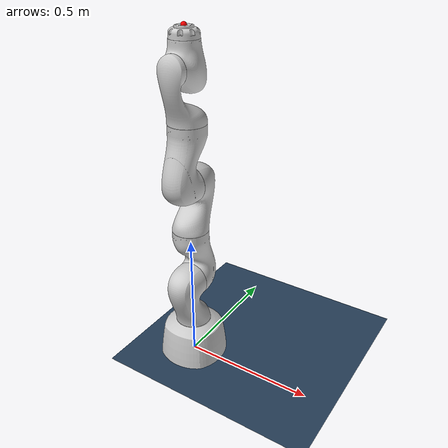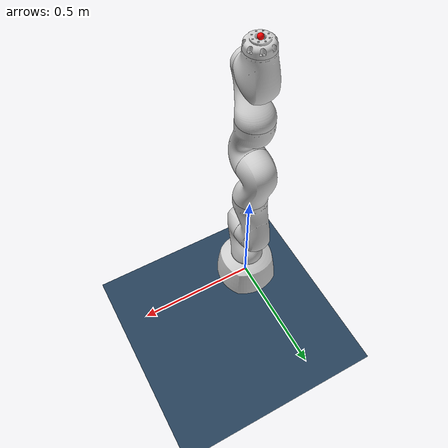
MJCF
<mujoco model="kuka_med7_scene">
  <include file="med7.xml"/>

  <statistic center="0 0 0.5" extent="1.5"/>

  <visual>
    <headlight diffuse="0.6 0.6 0.6" ambient="0.3 0.3 0.3" specular="0 0 0"/>
    <rgba haze="0.15 0.25 0.35 1"/>
    <global azimuth="120" elevation="-20"/>
  </visual>

  <asset>
    <texture type="skybox" builtin="gradient" rgb1="0.3 0.5 0.7" rgb2="0 0 0" width="512" height="3072"/>
    <texture type="2d" name="groundplane" builtin="checker" mark="edge" rgb1="0.2 0.3 0.4" rgb2="0.1 0.2 0.3" markrgb="0.8 0.8 0.8" width="300" height="300"/>
    <material name="groundplane" texture="groundplane" texuniform="true" texrepeat="5 5" reflectance="0.2"/>
  </asset>

  <worldbody>
    <light pos="0 0 1.5" dir="0 0 -1" directional="true"/>
    <geom name="floor" size="0 0 0.05" type="plane" material="groundplane"/>
  </worldbody>

  </mujoco>

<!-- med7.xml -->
<mujoco model="kuka_med7">
  <compiler angle="radian" meshdir="assets" autolimits="true"/>

  <option integrator="implicitfast"/>

  <default>
    <default class="med7">
      <material specular="0.5" shininess="0.25"/>
      <joint damping="5.0" frictionloss="0.5" armature="1.0"/>
      <position forcerange="-200 200"/>
      <general biastype="affine"/>
    </default>

    <default class="visual">
      <geom type="mesh" contype="0" conaffinity="0" group="2" material="light_grey"/>
    </default>

    <default class="collision">
      <geom type="mesh" group="3" rgba="0 0.5 1 0.5"/>
    </default>
  </default>

  <asset>
    <material name="light_grey" rgba="0.8 0.8 0.8 1"/>

    <mesh name="link_0_vis" file="visual/link_0.obj"/>
    <mesh name="link_1_vis" file="visual/link_1.obj"/>
    <mesh name="link_2_vis" file="visual/link_2.obj"/>
    <mesh name="link_3_vis" file="visual/link_3.obj"/>
    <mesh name="link_4_vis" file="visual/link_4.obj"/>
    <mesh name="link_5_vis" file="visual/link_5.obj"/>
    <mesh name="link_6_vis" file="visual/link_6.obj"/>
    <mesh name="link_7_vis" file="visual/link_7.obj"/>

    <mesh name="link_0_col" file="collision/link_0.stl"/>
    <mesh name="link_1_col" file="collision/link_1.stl"/>
    <mesh name="link_2_col" file="collision/link_2.stl"/>
    <mesh name="link_3_col" file="collision/link_3.stl"/>
    <mesh name="link_4_col" file="collision/link_4.stl"/>
    <mesh name="link_5_col" file="collision/link_5.stl"/>
    <mesh name="link_6_col" file="collision/link_6.stl"/>
    <mesh name="link_7_col" file="collision/link_7.stl"/>
  </asset>

  <worldbody>
    <body name="link_0" pos="0 0 0">
      <inertial pos="-0.001896 0.0 0.076263" mass="7.143112" diaginertia="0.038694 0.039461 0.054387"/>
      <geom mesh="link_0_vis" class="visual"/>
      <geom mesh="link_0_col" class="collision"/>

      <body name="link_1" pos="0 0 0.1475">
        <inertial pos="0.0 -0.034819 0.123299" mass="3.271499" fullinertia="0.020611 0.019667 0.00729 0 0 0.00366"/>
        <joint name="A1" axis="0 0 1" range="-2.9496 2.9496" class="med7"/>
        <geom mesh="link_1_vis" class="visual" pos="0 0 -0.1475"/>
        <geom mesh="link_1_col" class="collision" pos="0 0 -0.1475"/>

        <body name="link_2" pos="0 -0.0105 0.1925">
          <inertial pos="0.0 0.039793 0.086944" mass="3.886413" fullinertia="0.030552 0.028995 0.009317 0 0 0.005676"/>
          <joint name="A2" axis="0 1 0" range="-2.0769 2.0769" class="med7"/>
          <geom mesh="link_2_vis" class="visual" pos="0 0.0105 -0.34"/>
          <geom mesh="link_2_col" class="collision" pos="0 0.0105 -0.34"/>

          <body name="link_3" pos="0 0.0105 0.2075">
            <inertial pos="0.0 0.034819 0.123299" mass="3.271499" fullinertia="0.020611 0.019667 0.00729 0 0 -0.00366"/>
            <joint name="A3" axis="0 0 1" range="-2.9496 2.9496" class="med7"/>
            <geom mesh="link_3_vis" class="visual" pos="0 0 -0.5475"/>
            <geom mesh="link_3_col" class="collision" pos="0 0 -0.5475"/>

            <body name="link_4" pos="0 0.0105 0.1925">
              <inertial pos="0.0 -0.039793 0.086944" mass="3.886411" fullinertia="0.030547 0.028993 0.009313 0 0 -0.005676"/>
              <joint name="A4" axis="0 -1 0" range="-2.0769 2.0769" class="med7"/>
              <geom mesh="link_4_vis" class="visual" pos="0 -0.0105 -0.74"/>
              <geom mesh="link_4_col" class="collision" pos="0 -0.0105 -0.74"/>

              <body name="link_5" pos="0 -0.0105 0.2075">
                <inertial pos="0.0 -0.029824 0.076267" mass="1.474048" fullinertia="0.008179 0.006879 0.003709 0 0 0.002704"/>
                <joint name="A5" axis="0 0 1" range="-2.9496 2.9496" class="med7"/>
                <geom mesh="link_5_vis" class="visual" pos="0 0 -0.9475"/>
                <geom mesh="link_5_col" class="collision" pos="0 0 -0.9475"/>

                <body name="link_6" pos="0 -0.0707 0.1925">
                  <inertial pos="-0.000001 0.07102 0.004953" mass="2.316911" fullinertia="0.006813 0.006559 0.004462 0 0 0.0003"/>
                  <joint name="A6" axis="0 1 0" range="-2.0769 2.0769" class="med7"/>
                  <geom mesh="link_6_vis" class="visual" pos="0 0.0707 -1.14"/>
                  <geom mesh="link_6_col" class="collision" pos="0 0.0707 -1.14"/>

                  <body name="link_7" pos="0 0.0707 0.091">
                    <inertial pos="0.000003 -0.000002 0.013782" mass="0.250108" fullinertia="0.000165 0.000165 0.000288 0 0 0"/>
                    <joint name="A7" axis="0 0 1" range="-3.0368 3.0368" class="med7"/>
                    <geom mesh="link_7_vis" class="visual" pos="0 0 -1.231"/>
                    <geom mesh="link_7_col" class="collision" pos="0 0 -1.231"/>

                    <body name="link_ee" pos="0 0 0.035">
                      <site name="ee_site" pos="0 0 0" size="0.01" rgba="1 0 0 1"/>
                    </body>
                  </body>
                </body>
              </body>
            </body>
          </body>
        </body>
      </body>
    </body>
  </worldbody>

  <actuator>
    <position class="med7" name="A1" joint="A1" kp="800" kv="80"/>
    <position class="med7" name="A2" joint="A2" kp="800" kv="80"/>
    <position class="med7" name="A3" joint="A3" kp="500" kv="50"/>
    <position class="med7" name="A4" joint="A4" kp="500" kv="50"/>
    <position class="med7" name="A5" joint="A5" kp="300" kv="30"/>
    <position class="med7" name="A6" joint="A6" kp="200" kv="20"/>
    <position class="med7" name="A7" joint="A7" kp="200" kv="20"/>
  </actuator>

<!-- 传感器 -->
  <sensor>
    <force name="ee_force" site="ee_site"/>
    <torque name="ee_torque" site="ee_site"/>
  </sensor>

</mujoco>
